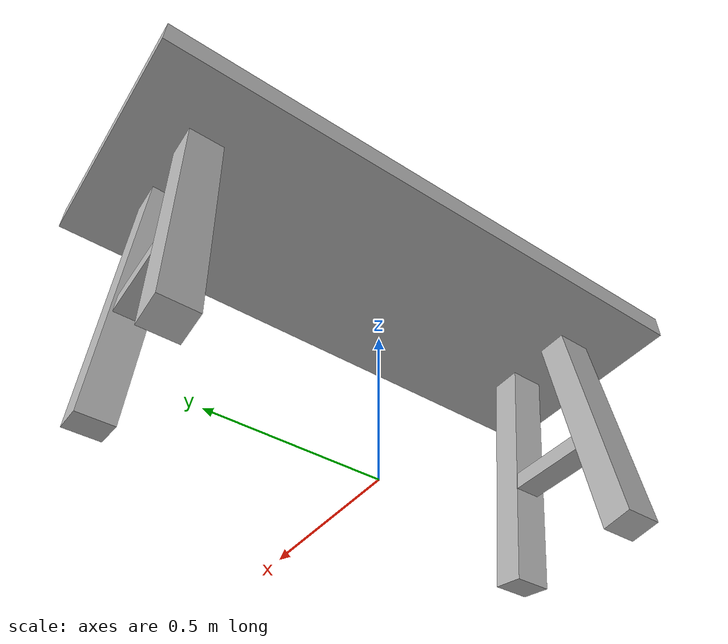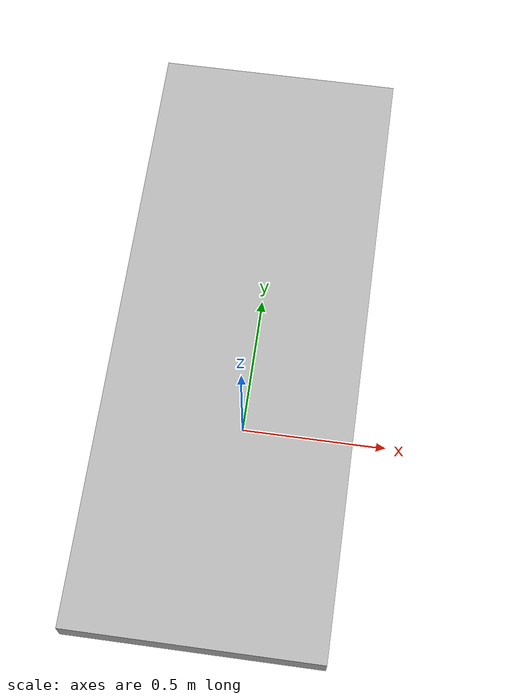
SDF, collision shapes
<?xml version="1.0" ?>
<sdf version="1.6">
  <model name="aws_robomaker_residential_KitchenTable_01">
    <link name="link">
      <inertial>
        <mass>12.3</mass>
      </inertial>
      <collision name="aws_kitchentable_01_collision_collider_box">
        <pose>0.0 0.0 0.779776 0.0 -0.0 0.0</pose>
        <geometry>
          <box>
            <size>0.721074 1.820408 0.077366</size>
          </box>
        </geometry>
      </collision>
      <collision name="aws_kitchentable_01_collision_collider_box.001">
        <pose>0.165048 -0.694343 0.385852 0.0 -0.139945 -0.0</pose>
        <geometry>
          <box>
            <size>0.097876 0.115479 0.779324</size>
          </box>
        </geometry>
      </collision>
      <collision name="aws_kitchentable_01_collision_collider_box.002">
        <pose>-0.168319 -0.694343 0.385852 0.0 0.139945 -0.0</pose>
        <geometry>
          <box>
            <size>0.097876 0.115479 0.779324</size>
          </box>
        </geometry>
      </collision>
      <collision name="aws_kitchentable_01_collision_collider_box.003">
        <pose>0.165048 0.690474 0.385852 0.0 -0.139945 -0.0</pose>
        <geometry>
          <box>
            <size>0.097876 0.104818 0.779324</size>
          </box>
        </geometry>
      </collision>
      <collision name="aws_kitchentable_01_collision_collider_box.004">
        <pose>-0.168319 0.690474 0.385852 0.0 0.139945 -0.0</pose>
        <geometry>
          <box>
            <size>0.097876 0.104818 0.779324</size>
          </box>
        </geometry>
      </collision>
      <collision name="aws_kitchentable_01_collision_collider_box.005">
        <pose>-0.004348 -0.681348 0.317243 0.0 -0.0 0.0</pose>
        <geometry>
          <box>
            <size>0.271384 0.085795 0.052134</size>
          </box>
        </geometry>
      </collision>
      <collision name="aws_kitchentable_01_collision_collider_box.006">
        <pose>-0.004348 0.691593 0.317243 0.0 -0.0 0.0</pose>
        <geometry>
          <box>
            <size>0.271384 0.085795 0.052134</size>
          </box>
        </geometry>
      </collision>
      <visual name="visual">
        <geometry>
          <mesh>
            <uri>model://aws_robomaker_residential_KitchenTable_01/meshes/aws_KitchenTable_01_visual.DAE</uri>
          </mesh>
        </geometry>
        <meta> <layer> 1 </layer></meta>
      </visual>
    </link>
  </model>
</sdf>
